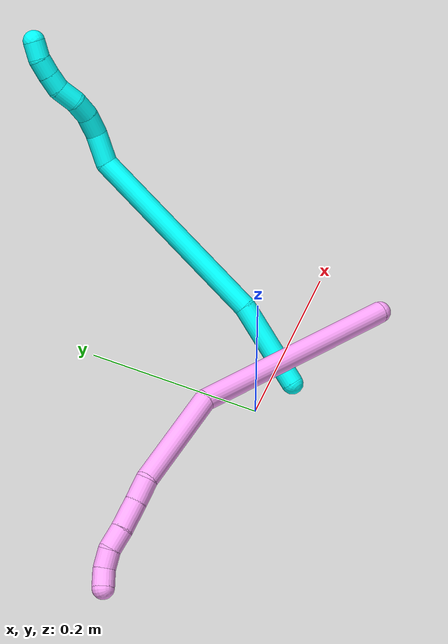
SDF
<sdf version="1.7">
 <world name="default">
  <model name="photoneo_s_sensor">
   <static>1</static>
   <pose>0 0 2 1.57079 1.57079 3.14159</pose>
   <link name="link">
    <inertial><mass>0.1</mass></inertial>
    <sensor name="sensor" type="depth">
     <update_rate>30</update_rate>
     <camera>
      <horizontal_fov>1.22</horizontal_fov>
      <image><width>1920</width><height>1200</height><format>B8G8R8</format></image>
      <clip><near>0.1</near><far>4</far></clip>
      <depth_camera><output>points</output></depth_camera>
     </camera>
     <plugin name="camera_plugin" filename="libgazebo_ros_depth_camera.so">
      <baseline>0.2</baseline>
      <alwaysOn>1</alwaysOn>
      <updateRate>0.0</updateRate>
      <cameraName>camera_ir</cameraName>
      <imageTopicName>/camera/color/image_raw</imageTopicName>
      <cameraInfoTopicName>/camera/color/camera_info</cameraInfoTopicName>
      <depthImageTopicName>/camera/depth/image_raw</depthImageTopicName>
      <depthImageCameraInfoTopicName>/camera/depth/camera_info</depthImageCameraInfoTopicName>
      <pointCloudTopicName>/camera/depth/points</pointCloudTopicName>
      <frameName>fr_optical</frameName>
      <pointCloudCutoff>0.1</pointCloudCutoff>
      <pointCloudCutoffMax>2.0</pointCloudCutoffMax>
      <distortionK1>0</distortionK1>
      <distortionK2>0</distortionK2>
      <distortionK3>0</distortionK3>
      <distortionT1>0</distortionT1>
      <distortionT2>0</distortionT2>
      <CxPrime>0</CxPrime>
      <Cx>0</Cx>
      <Cy>0</Cy>
      <focalLength>0</focalLength>
      <hackBaseline>0</hackBaseline>
     </plugin>
    </sensor>
   </link>
  </model>
  <model name="bin">
   <static>1</static>
   <link name="bottom">
    <collision name="collision-bottom">
     <pose>0 0 -0.01 0 -0 0</pose>
     <geometry><box><size>0.8 0.6 0.02</size></box></geometry>
     <surface>
      <friction><ode><mu>100</mu><mu2>100</mu2></ode></friction>
      <contact><collide_bitmask>65535</collide_bitmask></contact>
     </surface>
    </collision>
   </link>
   <link name="west_wall">
    <collision name="collision-west_wall">
     <pose>-0.41 0 0.1 0 -0 0</pose>
     <geometry><box><size>0.02 0.6 0.2</size></box></geometry>
     <surface>
      <friction><ode><mu>100</mu><mu2>100</mu2></ode></friction>
      <contact><collide_bitmask>65535</collide_bitmask></contact>
     </surface>
    </collision>
   </link>
   <link name="east_wall">
    <collision name="collision-east_wall">
     <pose>0.41 0 0.1 0 -0 0</pose>
     <geometry><box><size>0.02 0.6 0.2</size></box></geometry>
     <surface>
      <friction><ode><mu>100</mu><mu2>100</mu2></ode></friction>
      <contact><collide_bitmask>65535</collide_bitmask></contact>
     </surface>
    </collision>
   </link>
   <link name="south_wall">
    <collision name="collision-south_wall">
     <pose>0 -0.31 0.1 0 -0 0</pose>
     <geometry><box><size>0.8 0.02 0.2</size></box></geometry>
     <surface>
      <friction><ode><mu>100</mu><mu2>100</mu2></ode></friction>
      <contact><collide_bitmask>65535</collide_bitmask></contact>
     </surface>
    </collision>
   </link>
   <link name="north_wall">
    <collision name="collision-north_wall">
     <pose>0 0.31 0.1 0 -0 0</pose>
     <geometry><box><size>0.8 0.02 0.2</size></box></geometry>
     <surface>
      <friction><ode><mu>100</mu><mu2>100</mu2></ode></friction>
      <contact><collide_bitmask>65535</collide_bitmask></contact>
     </surface>
    </collision>
   </link>
  </model>
  <model name="3">
   <static>0</static>
   <link name="3">
    <collision name="collision-cylinder-e_1_1_4">
     <pose>-0.017262 0.018771 0.044118 -0.402267 -0.345593 0.071143</pose>
     <geometry><cylinder><radius>0.0125</radius><length>0.101917</length></cylinder></geometry>
     <surface>
      <friction><ode><mu>1.16</mu><mu2>1.16</mu2><slip1>0</slip1><slip2>0</slip2></ode></friction>
      <contact><ode><kp>1e+06</kp><kd>1</kd><max_vel>0</max_vel><min_depth>0.001</min_depth></ode></contact>
     </surface>
    </collision>
    <visual name="visual-cylinder-e_1_1_4">
     <pose>-0.017262 0.018771 0.044118 -0.402267 -0.345593 0.071143</pose>
     <geometry><cylinder><radius>0.0125</radius><length>0.101917</length></cylinder></geometry>
     <material><ambient>0.003922 1 0.996078 1</ambient></material>
    </visual>
    <collision name="collision-cylinder-e_2_4_5">
     <pose>-0.049064 0.080925 0.192293 -0.395008 -0.128255 0.025699</pose>
     <geometry><cylinder><radius>0.0125</radius><length>0.227343</length></cylinder></geometry>
     <surface>
      <friction><ode><mu>1.16</mu><mu2>1.16</mu2><slip1>0</slip1><slip2>0</slip2></ode></friction>
      <contact><ode><kp>1e+06</kp><kd>1</kd><max_vel>0</max_vel><min_depth>0.001</min_depth></ode></contact>
     </surface>
    </collision>
    <visual name="visual-cylinder-e_2_4_5">
     <pose>-0.049064 0.080925 0.192293 -0.395008 -0.128255 0.025699</pose>
     <geometry><cylinder><radius>0.0125</radius><length>0.227343</length></cylinder></geometry>
     <material><ambient>0.003922 1 0.996078 1</ambient></material>
    </visual>
    <collision name="collision-cylinder-e_3_5_6">
     <pose>-0.073799 0.132122 0.309065 -0.551021 -0.599329 0.174248</pose>
     <geometry><cylinder><radius>0.0125</radius><length>0.03615</length></cylinder></geometry>
     <surface>
      <friction><ode><mu>1.16</mu><mu2>1.16</mu2><slip1>0</slip1><slip2>0</slip2></ode></friction>
      <contact><ode><kp>1e+06</kp><kd>1</kd><max_vel>0</max_vel><min_depth>0.001</min_depth></ode></contact>
     </surface>
    </collision>
    <visual name="visual-cylinder-e_3_5_6">
     <pose>-0.073799 0.132122 0.309065 -0.551021 -0.599329 0.174248</pose>
     <geometry><cylinder><radius>0.0125</radius><length>0.03615</length></cylinder></geometry>
     <material><ambient>0.003922 1 0.996078 1</ambient></material>
    </visual>
    <collision name="collision-cylinder-e_4_6_7">
     <pose>-0.090062 0.149251 0.328163 -0.970026 -0.493037 0.263686</pose>
     <geometry><cylinder><radius>0.0125</radius><length>0.025637</length></cylinder></geometry>
     <surface>
      <friction><ode><mu>1.16</mu><mu2>1.16</mu2><slip1>0</slip1><slip2>0</slip2></ode></friction>
      <contact><ode><kp>1e+06</kp><kd>1</kd><max_vel>0</max_vel><min_depth>0.001</min_depth></ode></contact>
     </surface>
    </collision>
    <visual name="visual-cylinder-e_4_6_7">
     <pose>-0.090062 0.149251 0.328163 -0.970026 -0.493037 0.263686</pose>
     <geometry><cylinder><radius>0.0125</radius><length>0.025637</length></cylinder></geometry>
     <material><ambient>0.003922 1 0.996078 1</ambient></material>
    </visual>
    <collision name="collision-cylinder-e_5_7_8">
     <pose>-0.099192 0.168243 0.339845 -1.06988 -0.270779 0.161095</pose>
     <geometry><cylinder><radius>0.0125</radius><length>0.022902</length></cylinder></geometry>
     <surface>
      <friction><ode><mu>1.16</mu><mu2>1.16</mu2><slip1>0</slip1><slip2>0</slip2></ode></friction>
      <contact><ode><kp>1e+06</kp><kd>1</kd><max_vel>0</max_vel><min_depth>0.001</min_depth></ode></contact>
     </surface>
    </collision>
    <visual name="visual-cylinder-e_5_7_8">
     <pose>-0.099192 0.168243 0.339845 -1.06988 -0.270779 0.161095</pose>
     <geometry><cylinder><radius>0.0125</radius><length>0.022902</length></cylinder></geometry>
     <material><ambient>0.003922 1 0.996078 1</ambient></material>
    </visual>
    <collision name="collision-cylinder-e_6_8_9">
     <pose>-0.102839 0.187006 0.353484 -0.828069 -0.047341 0.020806</pose>
     <geometry><cylinder><radius>0.0125</radius><length>0.024693</length></cylinder></geometry>
     <surface>
      <friction><ode><mu>1.16</mu><mu2>1.16</mu2><slip1>0</slip1><slip2>0</slip2></ode></friction>
      <contact><ode><kp>1e+06</kp><kd>1</kd><max_vel>0</max_vel><min_depth>0.001</min_depth></ode></contact>
     </surface>
    </collision>
    <visual name="visual-cylinder-e_6_8_9">
     <pose>-0.102839 0.187006 0.353484 -0.828069 -0.047341 0.020806</pose>
     <geometry><cylinder><radius>0.0125</radius><length>0.024693</length></cylinder></geometry>
     <material><ambient>0.003922 1 0.996078 1</ambient></material>
    </visual>
    <collision name="collision-cylinder-e_7_9_10">
     <pose>-0.106938 0.202754 0.368474 -0.786499 -0.357366 0.149575</pose>
     <geometry><cylinder><radius>0.0125</radius><length>0.020097</length></cylinder></geometry>
     <surface>
      <friction><ode><mu>1.16</mu><mu2>1.16</mu2><slip1>0</slip1><slip2>0</slip2></ode></friction>
      <contact><ode><kp>1e+06</kp><kd>1</kd><max_vel>0</max_vel><min_depth>0.001</min_depth></ode></contact>
     </surface>
    </collision>
    <visual name="visual-cylinder-e_7_9_10">
     <pose>-0.106938 0.202754 0.368474 -0.786499 -0.357366 0.149575</pose>
     <geometry><cylinder><radius>0.0125</radius><length>0.020097</length></cylinder></geometry>
     <material><ambient>0.003922 1 0.996078 1</ambient></material>
    </visual>
    <collision name="collision-cylinder-e_8_10_11">
     <pose>-0.114739 0.21619 0.381734 -0.797445 -0.425212 0.181387</pose>
     <geometry><cylinder><radius>0.0125</radius><length>0.020778</length></cylinder></geometry>
     <surface>
      <friction><ode><mu>1.16</mu><mu2>1.16</mu2><slip1>0</slip1><slip2>0</slip2></ode></friction>
      <contact><ode><kp>1e+06</kp><kd>1</kd><max_vel>0</max_vel><min_depth>0.001</min_depth></ode></contact>
     </surface>
    </collision>
    <visual name="visual-cylinder-e_8_10_11">
     <pose>-0.114739 0.21619 0.381734 -0.797445 -0.425212 0.181387</pose>
     <geometry><cylinder><radius>0.0125</radius><length>0.020778</length></cylinder></geometry>
     <material><ambient>0.003922 1 0.996078 1</ambient></material>
    </visual>
    <collision name="collision-cylinder-e_9_11_2">
     <pose>-0.125199 0.227208 0.395327 -0.546297 -0.647039 0.187319</pose>
     <geometry><cylinder><radius>0.0125</radius><length>0.020484</length></cylinder></geometry>
     <surface>
      <friction><ode><mu>1.16</mu><mu2>1.16</mu2><slip1>0</slip1><slip2>0</slip2></ode></friction>
      <contact><ode><kp>1e+06</kp><kd>1</kd><max_vel>0</max_vel><min_depth>0.001</min_depth></ode></contact>
     </surface>
    </collision>
    <visual name="visual-cylinder-e_9_11_2">
     <pose>-0.125199 0.227208 0.395327 -0.546297 -0.647039 0.187319</pose>
     <geometry><cylinder><radius>0.0125</radius><length>0.020484</length></cylinder></geometry>
     <material><ambient>0.003922 1 0.996078 1</ambient></material>
    </visual>
    <collision name="collision-sphere-2">
     <pose>-0.131373 0.231453 0.40231 0 -0 0</pose>
     <geometry><sphere><radius>0.0125</radius></sphere></geometry>
     <surface>
      <friction><ode><mu>1.16</mu><mu2>1.16</mu2><slip1>0</slip1><slip2>0</slip2></ode></friction>
      <contact><ode><kp>1e+06</kp><kd>1</kd><max_vel>0</max_vel><min_depth>0.001</min_depth></ode></contact>
     </surface>
    </collision>
    <visual name="visual-sphere-2">
     <pose>-0.131373 0.231453 0.40231 0 -0 0</pose>
     <geometry><sphere><radius>0.0125</radius></sphere></geometry>
     <material><ambient>0.003922 1 0.996078 1</ambient></material>
    </visual>
    <collision name="collision-sphere-11">
     <pose>-0.119024 0.222962 0.388345 0 -0 0</pose>
     <geometry><sphere><radius>0.0125</radius></sphere></geometry>
     <surface>
      <friction><ode><mu>1.16</mu><mu2>1.16</mu2><slip1>0</slip1><slip2>0</slip2></ode></friction>
      <contact><ode><kp>1e+06</kp><kd>1</kd><max_vel>0</max_vel><min_depth>0.001</min_depth></ode></contact>
     </surface>
    </collision>
    <visual name="visual-sphere-11">
     <pose>-0.119024 0.222962 0.388345 0 -0 0</pose>
     <geometry><sphere><radius>0.0125</radius></sphere></geometry>
     <material><ambient>0.003922 1 0.996078 1</ambient></material>
    </visual>
    <collision name="collision-sphere-10">
     <pose>-0.110453 0.209418 0.375123 0 -0 0</pose>
     <geometry><sphere><radius>0.0125</radius></sphere></geometry>
     <surface>
      <friction><ode><mu>1.16</mu><mu2>1.16</mu2><slip1>0</slip1><slip2>0</slip2></ode></friction>
      <contact><ode><kp>1e+06</kp><kd>1</kd><max_vel>0</max_vel><min_depth>0.001</min_depth></ode></contact>
     </surface>
    </collision>
    <visual name="visual-sphere-10">
     <pose>-0.110453 0.209418 0.375123 0 -0 0</pose>
     <geometry><sphere><radius>0.0125</radius></sphere></geometry>
     <material><ambient>0.003922 1 0.996078 1</ambient></material>
    </visual>
    <collision name="collision-sphere-9">
     <pose>-0.103423 0.19609 0.361825 0 -0 0</pose>
     <geometry><sphere><radius>0.0125</radius></sphere></geometry>
     <surface>
      <friction><ode><mu>1.16</mu><mu2>1.16</mu2><slip1>0</slip1><slip2>0</slip2></ode></friction>
      <contact><ode><kp>1e+06</kp><kd>1</kd><max_vel>0</max_vel><min_depth>0.001</min_depth></ode></contact>
     </surface>
    </collision>
    <visual name="visual-sphere-9">
     <pose>-0.103423 0.19609 0.361825 0 -0 0</pose>
     <geometry><sphere><radius>0.0125</radius></sphere></geometry>
     <material><ambient>0.003922 1 0.996078 1</ambient></material>
    </visual>
    <collision name="collision-sphere-4">
     <pose>-0.034525 0.037542 0.088236 0 -0 0</pose>
     <geometry><sphere><radius>0.0125</radius></sphere></geometry>
     <surface>
      <friction><ode><mu>1.16</mu><mu2>1.16</mu2><slip1>0</slip1><slip2>0</slip2></ode></friction>
      <contact><ode><kp>1e+06</kp><kd>1</kd><max_vel>0</max_vel><min_depth>0.001</min_depth></ode></contact>
     </surface>
    </collision>
    <visual name="visual-sphere-4">
     <pose>-0.034525 0.037542 0.088236 0 -0 0</pose>
     <geometry><sphere><radius>0.0125</radius></sphere></geometry>
     <material><ambient>0.003922 1 0.996078 1</ambient></material>
    </visual>
    <collision name="collision-sphere-1">
     <geometry><sphere><radius>0.0125</radius></sphere></geometry>
     <surface>
      <friction><ode><mu>1.16</mu><mu2>1.16</mu2><slip1>0</slip1><slip2>0</slip2></ode></friction>
      <contact><ode><kp>1e+06</kp><kd>1</kd><max_vel>0</max_vel><min_depth>0.001</min_depth></ode></contact>
     </surface>
    </collision>
    <visual name="visual-sphere-1">
     <geometry><sphere><radius>0.0125</radius></sphere></geometry>
     <material><ambient>0.003922 1 0.996078 1</ambient></material>
    </visual>
    <collision name="collision-sphere-8">
     <pose>-0.102255 0.177922 0.345144 0 -0 0</pose>
     <geometry><sphere><radius>0.0125</radius></sphere></geometry>
     <surface>
      <friction><ode><mu>1.16</mu><mu2>1.16</mu2><slip1>0</slip1><slip2>0</slip2></ode></friction>
      <contact><ode><kp>1e+06</kp><kd>1</kd><max_vel>0</max_vel><min_depth>0.001</min_depth></ode></contact>
     </surface>
    </collision>
    <visual name="visual-sphere-8">
     <pose>-0.102255 0.177922 0.345144 0 -0 0</pose>
     <geometry><sphere><radius>0.0125</radius></sphere></geometry>
     <material><ambient>0.003922 1 0.996078 1</ambient></material>
    </visual>
    <collision name="collision-sphere-5">
     <pose>-0.063603 0.124308 0.296349 0 -0 0</pose>
     <geometry><sphere><radius>0.0125</radius></sphere></geometry>
     <surface>
      <friction><ode><mu>1.16</mu><mu2>1.16</mu2><slip1>0</slip1><slip2>0</slip2></ode></friction>
      <contact><ode><kp>1e+06</kp><kd>1</kd><max_vel>0</max_vel><min_depth>0.001</min_depth></ode></contact>
     </surface>
    </collision>
    <visual name="visual-sphere-5">
     <pose>-0.063603 0.124308 0.296349 0 -0 0</pose>
     <geometry><sphere><radius>0.0125</radius></sphere></geometry>
     <material><ambient>0.003922 1 0.996078 1</ambient></material>
    </visual>
    <collision name="collision-sphere-6">
     <pose>-0.083995 0.139936 0.32178 0 -0 0</pose>
     <geometry><sphere><radius>0.0125</radius></sphere></geometry>
     <surface>
      <friction><ode><mu>1.16</mu><mu2>1.16</mu2><slip1>0</slip1><slip2>0</slip2></ode></friction>
      <contact><ode><kp>1e+06</kp><kd>1</kd><max_vel>0</max_vel><min_depth>0.001</min_depth></ode></contact>
     </surface>
    </collision>
    <visual name="visual-sphere-6">
     <pose>-0.083995 0.139936 0.32178 0 -0 0</pose>
     <geometry><sphere><radius>0.0125</radius></sphere></geometry>
     <material><ambient>0.003922 1 0.996078 1</ambient></material>
    </visual>
    <collision name="collision-sphere-7">
     <pose>-0.096129 0.158565 0.334546 0 -0 0</pose>
     <geometry><sphere><radius>0.0125</radius></sphere></geometry>
     <surface>
      <friction><ode><mu>1.16</mu><mu2>1.16</mu2><slip1>0</slip1><slip2>0</slip2></ode></friction>
      <contact><ode><kp>1e+06</kp><kd>1</kd><max_vel>0</max_vel><min_depth>0.001</min_depth></ode></contact>
     </surface>
    </collision>
    <visual name="visual-sphere-7">
     <pose>-0.096129 0.158565 0.334546 0 -0 0</pose>
     <geometry><sphere><radius>0.0125</radius></sphere></geometry>
     <material><ambient>0.003922 1 0.996078 1</ambient></material>
    </visual>
    <inertial>
     <pose>-0.059598 0.10121 0.21549 0 -0 0</pose>
     <mass>0.5</mass>
     <inertia>
      <ixx>0.001104</ixx>
      <ixy>0</ixy>
      <ixz>0</ixz>
      <iyy>0.001063</iyy>
      <iyz>0</iyz>
      <izz>-0.000225</izz>
     </inertia>
    </inertial>
   </link>
   <pose>0.044457 -0.027049 0.011487 1.57606 0.676691 2.66444</pose>
  </model>
  <model name="4">
   <static>0</static>
   <link name="4">
    <collision name="collision-cylinder-e_1_1_4">
     <pose>-0.119549 -0.004277 -0.042734 3.04184 -1.22591 -2.99989</pose>
     <geometry><cylinder><radius>0.0125</radius><length>0.254059</length></cylinder></geometry>
     <surface>
      <friction><ode><mu>1.16</mu><mu2>1.16</mu2><slip1>0</slip1><slip2>0</slip2></ode></friction>
      <contact><ode><kp>1e+06</kp><kd>1</kd><max_vel>0</max_vel><min_depth>0.001</min_depth></ode></contact>
     </surface>
    </collision>
    <visual name="visual-cylinder-e_1_1_4">
     <pose>-0.119549 -0.004277 -0.042734 3.04184 -1.22591 -2.99989</pose>
     <geometry><cylinder><radius>0.0125</radius><length>0.254059</length></cylinder></geometry>
     <material><ambient>1 0.65098 0.996078 1</ambient></material>
    </visual>
    <collision name="collision-cylinder-e_2_4_5">
     <pose>-0.290613 -0.03345 -0.096711 1.995 -1.0832 -1.50024</pose>
     <geometry><cylinder><radius>0.0125</radius><length>0.116619</length></cylinder></geometry>
     <surface>
      <friction><ode><mu>1.16</mu><mu2>1.16</mu2><slip1>0</slip1><slip2>0</slip2></ode></friction>
      <contact><ode><kp>1e+06</kp><kd>1</kd><max_vel>0</max_vel><min_depth>0.001</min_depth></ode></contact>
     </surface>
    </collision>
    <visual name="visual-cylinder-e_2_4_5">
     <pose>-0.290613 -0.03345 -0.096711 1.995 -1.0832 -1.50024</pose>
     <geometry><cylinder><radius>0.0125</radius><length>0.116619</length></cylinder></geometry>
     <material><ambient>1 0.65098 0.996078 1</ambient></material>
    </visual>
    <collision name="collision-cylinder-e_3_5_6">
     <pose>-0.351403 -0.067609 -0.112237 2.00384 -0.737741 -1.08757</pose>
     <geometry><cylinder><radius>0.0125</radius><length>0.02758</length></cylinder></geometry>
     <surface>
      <friction><ode><mu>1.16</mu><mu2>1.16</mu2><slip1>0</slip1><slip2>0</slip2></ode></friction>
      <contact><ode><kp>1e+06</kp><kd>1</kd><max_vel>0</max_vel><min_depth>0.001</min_depth></ode></contact>
     </surface>
    </collision>
    <visual name="visual-cylinder-e_3_5_6">
     <pose>-0.351403 -0.067609 -0.112237 2.00384 -0.737741 -1.08757</pose>
     <geometry><cylinder><radius>0.0125</radius><length>0.02758</length></cylinder></geometry>
     <material><ambient>1 0.65098 0.996078 1</ambient></material>
    </visual>
    <collision name="collision-cylinder-e_4_6_7">
     <pose>-0.373672 -0.087198 -0.120299 1.92172 -0.868489 -1.17181</pose>
     <geometry><cylinder><radius>0.0125</radius><length>0.034044</length></cylinder></geometry>
     <surface>
      <friction><ode><mu>1.16</mu><mu2>1.16</mu2><slip1>0</slip1><slip2>0</slip2></ode></friction>
      <contact><ode><kp>1e+06</kp><kd>1</kd><max_vel>0</max_vel><min_depth>0.001</min_depth></ode></contact>
     </surface>
    </collision>
    <visual name="visual-cylinder-e_4_6_7">
     <pose>-0.373672 -0.087198 -0.120299 1.92172 -0.868489 -1.17181</pose>
     <geometry><cylinder><radius>0.0125</radius><length>0.034044</length></cylinder></geometry>
     <material><ambient>1 0.65098 0.996078 1</ambient></material>
    </visual>
    <collision name="collision-cylinder-e_5_7_8">
     <pose>-0.39606 -0.104942 -0.128167 2.07444 -0.837084 -1.29085</pose>
     <geometry><cylinder><radius>0.0125</radius><length>0.025298</length></cylinder></geometry>
     <surface>
      <friction><ode><mu>1.16</mu><mu2>1.16</mu2><slip1>0</slip1><slip2>0</slip2></ode></friction>
      <contact><ode><kp>1e+06</kp><kd>1</kd><max_vel>0</max_vel><min_depth>0.001</min_depth></ode></contact>
     </surface>
    </collision>
    <visual name="visual-cylinder-e_5_7_8">
     <pose>-0.39606 -0.104942 -0.128167 2.07444 -0.837084 -1.29085</pose>
     <geometry><cylinder><radius>0.0125</radius><length>0.025298</length></cylinder></geometry>
     <material><ambient>1 0.65098 0.996078 1</ambient></material>
    </visual>
    <collision name="collision-cylinder-e_6_8_9">
     <pose>-0.411359 -0.121026 -0.134719 1.8478 -0.580222 -0.752795</pose>
     <geometry><cylinder><radius>0.0125</radius><length>0.021543</length></cylinder></geometry>
     <surface>
      <friction><ode><mu>1.16</mu><mu2>1.16</mu2><slip1>0</slip1><slip2>0</slip2></ode></friction>
      <contact><ode><kp>1e+06</kp><kd>1</kd><max_vel>0</max_vel><min_depth>0.001</min_depth></ode></contact>
     </surface>
    </collision>
    <visual name="visual-cylinder-e_6_8_9">
     <pose>-0.411359 -0.121026 -0.134719 1.8478 -0.580222 -0.752795</pose>
     <geometry><cylinder><radius>0.0125</radius><length>0.021543</length></cylinder></geometry>
     <material><ambient>1 0.65098 0.996078 1</ambient></material>
    </visual>
    <collision name="collision-cylinder-e_7_9_2">
     <pose>-0.423349 -0.138114 -0.1363 1.46644 -0.622941 -0.564496</pose>
     <geometry><cylinder><radius>0.0125</radius><length>0.020857</length></cylinder></geometry>
     <surface>
      <friction><ode><mu>1.16</mu><mu2>1.16</mu2><slip1>0</slip1><slip2>0</slip2></ode></friction>
      <contact><ode><kp>1e+06</kp><kd>1</kd><max_vel>0</max_vel><min_depth>0.001</min_depth></ode></contact>
     </surface>
    </collision>
    <visual name="visual-cylinder-e_7_9_2">
     <pose>-0.423349 -0.138114 -0.1363 1.46644 -0.622941 -0.564496</pose>
     <geometry><cylinder><radius>0.0125</radius><length>0.020857</length></cylinder></geometry>
     <material><ambient>1 0.65098 0.996078 1</ambient></material>
    </visual>
    <collision name="collision-sphere-2">
     <pose>-0.429433 -0.146538 -0.135418 0 -0 0</pose>
     <geometry><sphere><radius>0.0125</radius></sphere></geometry>
     <surface>
      <friction><ode><mu>1.16</mu><mu2>1.16</mu2><slip1>0</slip1><slip2>0</slip2></ode></friction>
      <contact><ode><kp>1e+06</kp><kd>1</kd><max_vel>0</max_vel><min_depth>0.001</min_depth></ode></contact>
     </surface>
    </collision>
    <visual name="visual-sphere-2">
     <pose>-0.429433 -0.146538 -0.135418 0 -0 0</pose>
     <geometry><sphere><radius>0.0125</radius></sphere></geometry>
     <material><ambient>1 0.65098 0.996078 1</ambient></material>
    </visual>
    <collision name="collision-sphere-9">
     <pose>-0.417264 -0.129691 -0.137182 0 -0 0</pose>
     <geometry><sphere><radius>0.0125</radius></sphere></geometry>
     <surface>
      <friction><ode><mu>1.16</mu><mu2>1.16</mu2><slip1>0</slip1><slip2>0</slip2></ode></friction>
      <contact><ode><kp>1e+06</kp><kd>1</kd><max_vel>0</max_vel><min_depth>0.001</min_depth></ode></contact>
     </surface>
    </collision>
    <visual name="visual-sphere-9">
     <pose>-0.417264 -0.129691 -0.137182 0 -0 0</pose>
     <geometry><sphere><radius>0.0125</radius></sphere></geometry>
     <material><ambient>1 0.65098 0.996078 1</ambient></material>
    </visual>
    <collision name="collision-sphere-4">
     <pose>-0.239099 -0.008554 -0.085467 0 -0 0</pose>
     <geometry><sphere><radius>0.0125</radius></sphere></geometry>
     <surface>
      <friction><ode><mu>1.16</mu><mu2>1.16</mu2><slip1>0</slip1><slip2>0</slip2></ode></friction>
      <contact><ode><kp>1e+06</kp><kd>1</kd><max_vel>0</max_vel><min_depth>0.001</min_depth></ode></contact>
     </surface>
    </collision>
    <visual name="visual-sphere-4">
     <pose>-0.239099 -0.008554 -0.085467 0 -0 0</pose>
     <geometry><sphere><radius>0.0125</radius></sphere></geometry>
     <material><ambient>1 0.65098 0.996078 1</ambient></material>
    </visual>
    <collision name="collision-sphere-1">
     <geometry><sphere><radius>0.0125</radius></sphere></geometry>
     <surface>
      <friction><ode><mu>1.16</mu><mu2>1.16</mu2><slip1>0</slip1><slip2>0</slip2></ode></friction>
      <contact><ode><kp>1e+06</kp><kd>1</kd><max_vel>0</max_vel><min_depth>0.001</min_depth></ode></contact>
     </surface>
    </collision>
    <visual name="visual-sphere-1">
     <geometry><sphere><radius>0.0125</radius></sphere></geometry>
     <material><ambient>1 0.65098 0.996078 1</ambient></material>
    </visual>
    <collision name="collision-sphere-8">
     <pose>-0.405454 -0.11236 -0.132255 0 -0 0</pose>
     <geometry><sphere><radius>0.0125</radius></sphere></geometry>
     <surface>
      <friction><ode><mu>1.16</mu><mu2>1.16</mu2><slip1>0</slip1><slip2>0</slip2></ode></friction>
      <contact><ode><kp>1e+06</kp><kd>1</kd><max_vel>0</max_vel><min_depth>0.001</min_depth></ode></contact>
     </surface>
    </collision>
    <visual name="visual-sphere-8">
     <pose>-0.405454 -0.11236 -0.132255 0 -0 0</pose>
     <geometry><sphere><radius>0.0125</radius></sphere></geometry>
     <material><ambient>1 0.65098 0.996078 1</ambient></material>
    </visual>
    <collision name="collision-sphere-5">
     <pose>-0.342127 -0.058347 -0.107955 0 -0 0</pose>
     <geometry><sphere><radius>0.0125</radius></sphere></geometry>
     <surface>
      <friction><ode><mu>1.16</mu><mu2>1.16</mu2><slip1>0</slip1><slip2>0</slip2></ode></friction>
      <contact><ode><kp>1e+06</kp><kd>1</kd><max_vel>0</max_vel><min_depth>0.001</min_depth></ode></contact>
     </surface>
    </collision>
    <visual name="visual-sphere-5">
     <pose>-0.342127 -0.058347 -0.107955 0 -0 0</pose>
     <geometry><sphere><radius>0.0125</radius></sphere></geometry>
     <material><ambient>1 0.65098 0.996078 1</ambient></material>
    </visual>
    <collision name="collision-sphere-6">
     <pose>-0.360678 -0.076872 -0.116519 0 -0 0</pose>
     <geometry><sphere><radius>0.0125</radius></sphere></geometry>
     <surface>
      <friction><ode><mu>1.16</mu><mu2>1.16</mu2><slip1>0</slip1><slip2>0</slip2></ode></friction>
      <contact><ode><kp>1e+06</kp><kd>1</kd><max_vel>0</max_vel><min_depth>0.001</min_depth></ode></contact>
     </surface>
    </collision>
    <visual name="visual-sphere-6">
     <pose>-0.360678 -0.076872 -0.116519 0 -0 0</pose>
     <geometry><sphere><radius>0.0125</radius></sphere></geometry>
     <material><ambient>1 0.65098 0.996078 1</ambient></material>
    </visual>
    <collision name="collision-sphere-7">
     <pose>-0.386665 -0.097523 -0.124079 0 -0 0</pose>
     <geometry><sphere><radius>0.0125</radius></sphere></geometry>
     <surface>
      <friction><ode><mu>1.16</mu><mu2>1.16</mu2><slip1>0</slip1><slip2>0</slip2></ode></friction>
      <contact><ode><kp>1e+06</kp><kd>1</kd><max_vel>0</max_vel><min_depth>0.001</min_depth></ode></contact>
     </surface>
    </collision>
    <visual name="visual-sphere-7">
     <pose>-0.386665 -0.097523 -0.124079 0 -0 0</pose>
     <geometry><sphere><radius>0.0125</radius></sphere></geometry>
     <material><ambient>1 0.65098 0.996078 1</ambient></material>
    </visual>
    <inertial>
     <pose>-0.228776 -0.035927 -0.076627 0 -0 0</pose>
     <mass>0.5</mass>
     <inertia>
      <ixx>-0.000622</ixx>
      <ixy>0</ixy>
      <ixz>0</ixz>
      <iyy>0.001337</iyy>
      <iyz>0</iyz>
      <izz>0.001528</izz>
     </inertia>
    </inertial>
   </link>
   <pose>0.167699 -0.085744 0.024267 0.901375 0.408387 -0.282047</pose>
  </model>
 </world>
</sdf>
